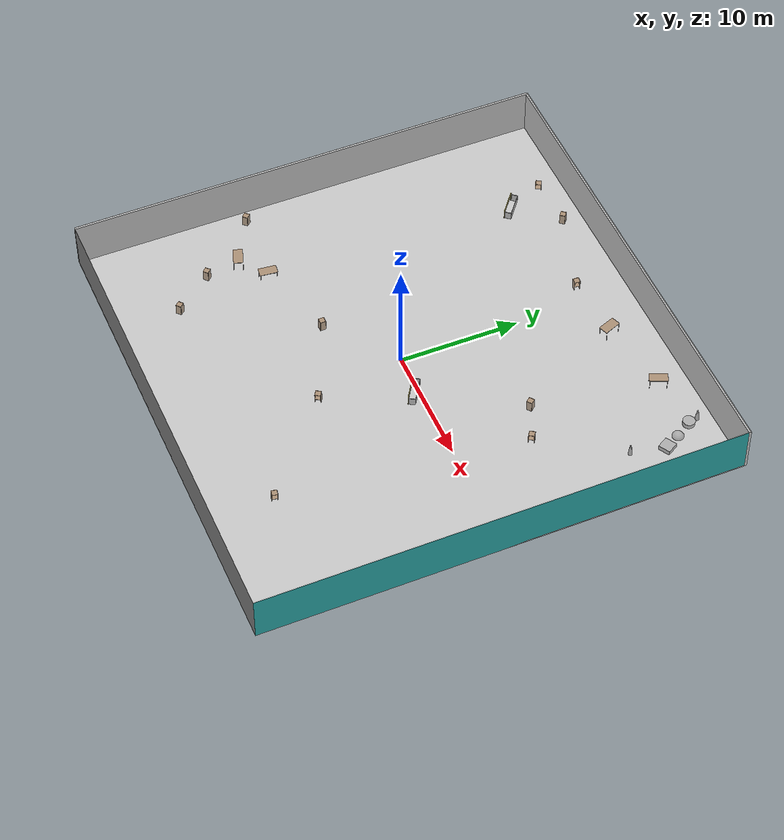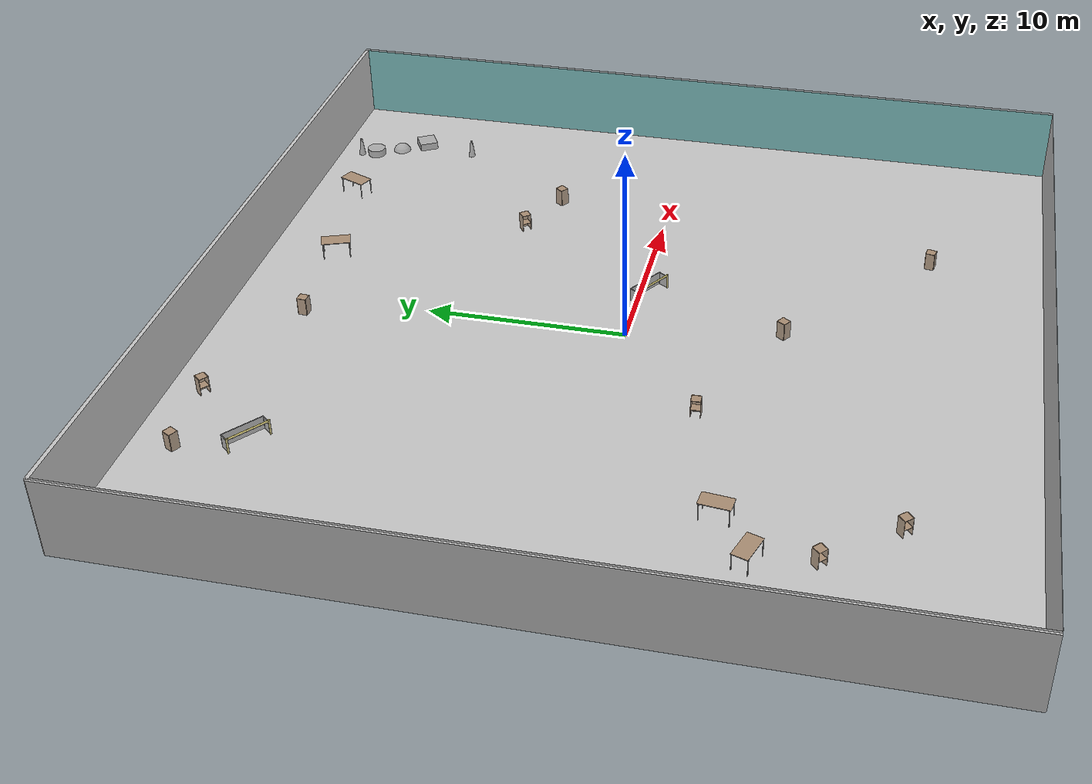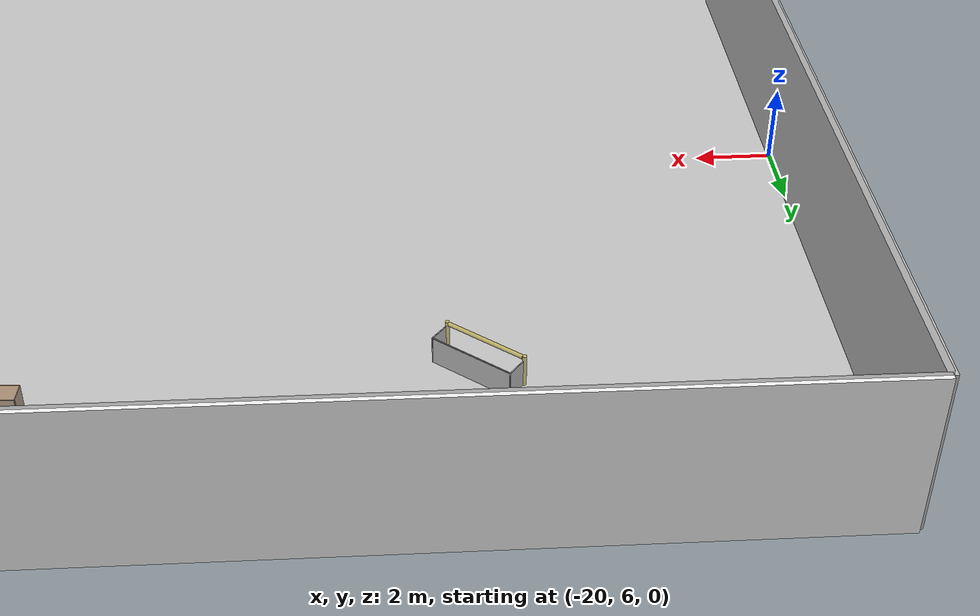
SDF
<sdf version="1.4">
 <world name="default">
  <physics type="ode">
   <max_step_size>0.001</max_step_size>
   <real_time_factor>1</real_time_factor>
   <real_time_update_rate>1000</real_time_update_rate>
   <gravity>0 0 -9.8</gravity>
  </physics>
  <scene><ambient>0.4 0.4 0.4 1</ambient><background>0.7 0.7 0.7 1</background><shadows>1</shadows></scene>
  <model name="Surrounding">
   <static>1</static>
   <link name="Ceiling">
    <collision name="Ceiling_Collision"><geometry><box><size>40 40 0.1</size></box></geometry></collision>
    <visual name="Ceiling_Visual">
     <geometry><box><size>40 40 0.1</size></box></geometry>
     <material>
      <script><uri>file://media/materials/scripts/gazebo.material</uri><name>Gazebo/GreyTransparent</name></script>
     </material>
    </visual>
    <pose>0 0 4.05 0 0 0</pose>
   </link>
   <link name="Wall_South">
    <collision name="Wall_South_Collision">
     <geometry><box><size>40 0 4</size></box></geometry>
     <pose>0 0 2 0 -0 0</pose>
    </collision>
    <visual name="Wall_South_Visual">
     <pose>0 0 2 0 -0 0</pose>
     <geometry><box><size>40 0 4</size></box></geometry>
     <material>
      <script><uri>file://media/materials/scripts/gazebo.material</uri><name>Gazebo/PioneerBody</name></script>
     </material>
    </visual>
    <velocity_decay><linear>0</linear><angular>0</angular></velocity_decay>
    <pose>0 -20 0 0 -0 0</pose>
   </link>
   <link name="Wall_East">
    <collision name="Wall_21_Collision">
     <geometry><box><size>40 0 4</size></box></geometry>
     <pose>0 0 2 0 -0 0</pose>
    </collision>
    <visual name="Wall_21_Visual">
     <pose>0 0 2 0 -0 0</pose>
     <geometry><box><size>40 0 4</size></box></geometry>
     <material>
      <script><uri>file://media/materials/scripts/gazebo.material</uri><name>Gazebo/Turquoise</name></script>
     </material>
    </visual>
    <velocity_decay><linear>0</linear><angular>0</angular></velocity_decay>
    <pose>20 0 0 0 -0 1.5708</pose>
   </link>
   <link name="Wall_North">
    <collision name="Wall_22_Collision">
     <geometry><box><size>40 0.2 4</size></box></geometry>
     <pose>0 0 2 0 -0 0</pose>
    </collision>
    <visual name="Wall_22_Visual">
     <pose>0 0 2 0 -0 0</pose>
     <geometry><box><size>40 0.2 4</size></box></geometry>
     <material>
      <script><uri>file://media/materials/scripts/gazebo.material</uri><name>Gazebo/WhiteGlow</name></script>
     </material>
    </visual>
    <velocity_decay><linear>0</linear><angular>0</angular></velocity_decay>
    <pose>0 20 0 0 -0 0</pose>
   </link>
   <link name="Wall_West">
    <collision name="Wall_23_Collision">
     <geometry><box><size>40 0.2 4</size></box></geometry>
     <pose>0 0 2 0 -0 0</pose>
    </collision>
    <visual name="Wall_23_Visual">
     <pose>0 0 2 0 -0 0</pose>
     <geometry><box><size>40 0.2 4</size></box></geometry>
     <material>
      <script><uri>file://media/materials/scripts/gazebo.material</uri><name>Gazebo/JointAnchor</name></script>
     </material>
    </visual>
    <velocity_decay><linear>0</linear><angular>0</angular></velocity_decay>
    <pose>-20 0 0 0 0 -1.5708</pose>
   </link>
   <link name="Ground_link">
    <collision name="collision">
     <pose>0 0 .05 0 -0 0</pose>
     <geometry><box><size>40 40 0.1</size></box></geometry>
    </collision>
    <visual name="visual">
     <pose>0 0 .05 0 -0 0</pose>
     <geometry><box><size>40 40 0.1</size></box></geometry>
     <material>
      <script><uri>file://media/materials/scripts/gazebo.material</uri><name>Gazebo/White</name></script>
     </material>
    </visual>
   </link>
   <static>1</static>
  </model>
  <spherical_coordinates>
   <surface_model>EARTH_WGS84</surface_model>
   <latitude_deg>0</latitude_deg>
   <longitude_deg>0</longitude_deg>
   <elevation>0</elevation>
   <heading_deg>0</heading_deg>
  </spherical_coordinates>
  <light name="lightball_0" type="diffuse">
   <diffuse>0.8 0.8 0.8 1</diffuse>
   <specular>0.2 0.2 0.2 1</specular>
   <attenuation>
    <range>100</range>
    <constant>0.7</constant>
    <linear>0.01</linear>
    <quadratic>0.001</quadratic>
   </attenuation>
   <direction>-0.5 0.1 -0.9</direction>
   <pose>6.76087864993 -18.9951185447 2.38137912667 0 0 0</pose>
  </light>
  <light name="lightball_1" type="diffuse">
   <diffuse>0.8 0.8 0.8 1</diffuse>
   <specular>0.2 0.2 0.2 1</specular>
   <attenuation>
    <range>100</range>
    <constant>0.7</constant>
    <linear>0.01</linear>
    <quadratic>0.001</quadratic>
   </attenuation>
   <direction>-0.5 0.1 -0.9</direction>
   <pose>-0.481071658987 14.5350861725 2.51685513558 0 0 0</pose>
  </light>
  <light name="lightball_2" type="diffuse">
   <diffuse>0.8 0.8 0.8 1</diffuse>
   <specular>0.2 0.2 0.2 1</specular>
   <attenuation>
    <range>100</range>
    <constant>0.7</constant>
    <linear>0.01</linear>
    <quadratic>0.001</quadratic>
   </attenuation>
   <direction>-0.5 0.1 -0.9</direction>
   <pose>-19.4892894938 15.2338686643 2.36268678214 0 0 0</pose>
  </light>
  <light name="lightball_3" type="diffuse">
   <diffuse>0.8 0.8 0.8 1</diffuse>
   <specular>0.2 0.2 0.2 1</specular>
   <attenuation>
    <range>100</range>
    <constant>0.7</constant>
    <linear>0.01</linear>
    <quadratic>0.001</quadratic>
   </attenuation>
   <direction>-0.5 0.1 -0.9</direction>
   <pose>-5.30811436231 -2.27758125033 3.3318938232 0 0 0</pose>
  </light>
  <include><uri>model://cabinet</uri><pose>-18.6918606616 -5.91768797878 0 0 0 0.762460534169</pose></include>
  <include><uri>model://cabinet</uri><pose>-14.197258181 -11.0225358488 0 0 0 0.800442806536</pose></include>
  <include><uri>model://table</uri><pose>-14.6823277028 -8.14200078212 0 0 0 2.81898514047</pose></include>
  <include><uri>model://cabinet</uri><pose>-11.5967466429 -14.2860775558 0 0 0 0.725535176157</pose></include>
  <include><uri>model://table</uri><pose>-12.2496446266 -6.4789512023 0 0 0 1.46139476803</pose></include>
  <include>
   <uri>model://robocup_3Dsim_goal</uri>
   <pose>-11.7191537574 14.5822540677 0 0 0 0.892420900928</pose>
  </include>
  <include><uri>model://cabinet</uri><pose>-12.6750703839 17.8230169766 0 0 0 2.63792006613</pose></include>
  <include><uri>model://cabinet</uri><pose>-8.6312335269 18.1649524385 0 0 0 0.874234000997</pose></include>
  <include><uri>model://cabinet</uri><pose>-5.56132703914 -4.47112713603 0 0 0 0.0252490917092</pose></include>
  <include><uri>model://cabinet</uri><pose>-1.49923332374 15.9871829616 0 0 0 3.06529791016</pose></include>
  <include><uri>model://cabinet</uri><pose>1.34374855733 -7.58083425044 0 0 0 2.54944230241</pose></include>
  <include>
   <uri>model://robocup_3Dsim_goal</uri>
   <pose>3.50287390354 -0.698374848542 0 0 0 1.00242365843</pose>
  </include>
  <include><uri>model://table</uri><pose>3.90587826306 16.2884690217 0 0 0 1.93246534198</pose></include>
  <include><uri>model://cabinet</uri><pose>9.09257748179 -14.2382402859 0 0 0 2.95448341581</pose></include>
  <include><uri>model://cabinet</uri><pose>8.4721245015 7.2689025084 0 0 0 0.678425636121</pose></include>
  <include><uri>model://table</uri><pose>10.2329540409 17.4476448978 0 0 0 1.16886468045</pose></include>
  <include><uri>model://cabinet</uri><pose>11.5002029121 5.97572730819 0 0 0 2.51282340918</pose></include>
  <include>
   <uri>model://construction_cone</uri>
   <pose>15.5948622776 12.3745117273 0 0 0 0.0238271718999</pose>
  </include>
  <include>
   <uri>model://textured_shapes</uri>
   <pose>15.4506405744 16.5586755868 0 0 0 0.525588011137</pose>
  </include>
  <include>
   <uri>model://construction_cone</uri>
   <pose>14.5103376705 18.6696920104 0 0 0 1.3595898594</pose>
  </include>
 </world>
</sdf>

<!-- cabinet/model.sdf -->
<sdf version="1.5">
  <model name="cabinet">
    <static>true</static>
    <link name="cabinet_bottom_plate">
      <inertial>
        <pose>0 0 -1 0 0 0</pose>
        <inertia>
          <ixx>2.050000</ixx>
          <ixy>0</ixy>
          <ixz>0</ixz>
          <iyy>2.050000</iyy>
          <iyz>0</iyz>
          <izz>2.050000</izz>
        </inertia>
        <mass>25.000000</mass>
      </inertial>
      <collision name="cabinet_bottom_plate_geom">
        <pose>0 0 0.010000 0 0 0</pose>
        <geometry>
          <box>
            <size>0.450000 0.450000 0.020000</size>
          </box>
        </geometry>
      </collision>
      <visual name="cabinet_bottom_plate_geom_visual">
        <pose>0 0 0.010000 0 0 0</pose>
        <geometry>
          <box>
            <size>0.450000 0.450000 0.020000</size>
          </box>
        </geometry>
        <material>
          <script>
            <uri>model://media/materials/scripts/gazebo.material</uri>
            <name>Gazebo/Wood</name>
          </script>
        </material>
      </visual>
      <collision name="cabinet_bottom_plate_geom_cabinet_back_plate">
        <pose>0.235000 0 0.510000 0 0 0</pose>
        <geometry>
          <box>
            <size>0.020000 0.450000 1.020000</size>
          </box>
        </geometry>
      </collision>
      <visual name="cabinet_bottom_plate_geom_cabinet_back_plate_visual">
        <pose>0.235000 0 0.510000 0 0 0</pose>
        <geometry>
          <box>
            <size>0.020000 0.450000 1.020000</size>
          </box>
        </geometry>
        <material>
          <script>
            <uri>model://media/materials/scripts/gazebo.material</uri>
            <name>Gazebo/Wood</name>
          </script>
        </material>
      </visual>
      <collision name="cabinet_bottom_plate_geom_cabinet_left_plate">
        <pose>0 0.235000 0.510000 0 0 0</pose>
        <geometry>
          <box>
            <size>0.450000 0.020000 1.020000</size>
          </box>
        </geometry>
      </collision>
      <visual name="cabinet_bottom_plate_geom_cabinet_left_plate_visual">
        <pose>0 0.235000 0.510000 0 0 0</pose>
        <geometry>
          <box>
            <size>0.450000 0.020000 1.020000</size>
          </box>
        </geometry>
        <material>
          <script>
            <uri>model://media/materials/scripts/gazebo.material</uri>
            <name>Gazebo/Wood</name>
          </script>
        </material>
      </visual>
      <collision name="cabinet_bottom_plate_geom_cabinet_middle_plate">
        <pose>0 0 0.510000 0 0 0</pose>
        <geometry>
          <box>
            <size>0.450000 0.450000 0.020000</size>
          </box>
        </geometry>
      </collision>
      <visual name="cabinet_bottom_plate_geom_cabinet_middle_plate_visual">
        <pose>0 0 0.510000 0 0 0</pose>
        <geometry>
          <box>
            <size>0.450000 0.450000 0.020000</size>
          </box>
        </geometry>
        <material>
          <script>
            <uri>model://media/materials/scripts/gazebo.material</uri>
            <name>Gazebo/Wood</name>
          </script>
        </material>
      </visual>
      <collision name="cabinet_bottom_plate_geom_cabinet_right_plate">
        <pose>0 -0.235000 0.510000 0 0 0</pose>
        <geometry>
          <box>
            <size>0.450000 0.020000 1.020000</size>
          </box>
        </geometry>
      </collision>
      <visual name="cabinet_bottom_plate_geom_cabinet_right_plate_visual">
        <pose>0 -0.235000 0.510000 0 0 0</pose>
        <geometry>
          <box>
            <size>0.450000 0.020000 1.020000</size>
          </box>
        </geometry>
        <material>
          <script>
            <uri>model://media/materials/scripts/gazebo.material</uri>
            <name>Gazebo/Wood</name>
          </script>
        </material>
      </visual>
      <collision name="cabinet_bottom_plate_geom_cabinet_top_plate">
        <pose>0 0 1.010000 0 0 0</pose>
        <geometry>
          <box>
            <size>0.450000 0.450000 0.020000</size>
          </box>
        </geometry>
      </collision>
      <visual name="cabinet_bottom_plate_geom_cabinet_top_plate_visual">
        <pose>0 0 1.010000 0 0 0</pose>
        <geometry>
          <box>
            <size>0.450000 0.450000 0.020000</size>
          </box>
        </geometry>
        <material>
          <script>
            <uri>model://media/materials/scripts/gazebo.material</uri>
            <name>Gazebo/Wood</name>
          </script>
        </material>
      </visual>
    </link>
  </model>
</sdf>

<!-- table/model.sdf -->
<sdf version="1.5">
  <model name="table">
    <static>true</static>
    <link name="link">
      <collision name="surface">
        <pose>0 0 1.0 0 0 0</pose>
        <geometry>
          <box>
            <size>1.5 0.8 0.03</size>
          </box>
        </geometry>
        <surface>
          <friction>
            <ode>
              <mu>0.6</mu>
              <mu2>0.6</mu2>
            </ode>
          </friction>
        </surface>
      </collision>
      <visual name="visual1">
        <pose>0 0 1.0 0 0 0</pose>
        <geometry>
          <box>
            <size>1.5 0.8 0.03</size>
          </box>
        </geometry>
        <material>
          <script>
            <uri>model://media/materials/scripts/gazebo.material</uri>
            <name>Gazebo/Wood</name>
          </script>
        </material>
      </visual>
      <collision name="front_left_leg">
        <pose>0.68 0.38 0.5 0 0 0</pose>
        <geometry>
          <cylinder>
            <radius>0.02</radius>
            <length>1.0</length>
          </cylinder>
        </geometry>
      </collision>
      <visual name="front_left_leg">
        <pose>0.68 0.38 0.5 0 0 0</pose>
        <geometry>
          <cylinder>
            <radius>0.02</radius>
            <length>1.0</length>
          </cylinder>
        </geometry>
        <material>
          <script>
            <uri>model://media/materials/scripts/gazebo.material</uri>
            <name>Gazebo/Grey</name>
          </script>
        </material>
      </visual>
      <collision name="front_right_leg">
        <pose>0.68 -0.38 0.5 0 0 0</pose>
        <geometry>
          <cylinder>
            <radius>0.02</radius>
            <length>1.0</length>
          </cylinder>
        </geometry>
      </collision>
      <visual name="front_right_leg">
        <pose>0.68 -0.38 0.5 0 0 0</pose>
        <geometry>
          <cylinder>
            <radius>0.02</radius>
            <length>1.0</length>
          </cylinder>
        </geometry>
        <material>
          <script>
            <uri>model://media/materials/scripts/gazebo.material</uri>
            <name>Gazebo/Grey</name>
          </script>
        </material>
      </visual>
      <collision name="back_right_leg">
        <pose>-0.68 -0.38 0.5 0 0 0</pose>
        <geometry>
          <cylinder>
            <radius>0.02</radius>
            <length>1.0</length>
          </cylinder>
        </geometry>
      </collision>
      <visual name="back_right_leg">
        <pose>-0.68 -0.38 0.5 0 0 0</pose>
        <geometry>
          <cylinder>
            <radius>0.02</radius>
            <length>1.0</length>
          </cylinder>
        </geometry>
        <material>
          <script>
            <uri>model://media/materials/scripts/gazebo.material</uri>
            <name>Gazebo/Grey</name>
          </script>
        </material>
      </visual>
      <collision name="back_left_leg">
        <pose>-0.68 0.38 0.5 0 0 0</pose>
        <geometry>
          <cylinder>
            <radius>0.02</radius>
            <length>1.0</length>
          </cylinder>
        </geometry>
      </collision>
      <visual name="back_left_leg">
        <pose>-0.68 0.38 0.5 0 0 0</pose>
        <geometry>
          <cylinder>
            <radius>0.02</radius>
            <length>1.0</length>
          </cylinder>
        </geometry>
        <material>
          <script>
            <uri>model://media/materials/scripts/gazebo.material</uri>
            <name>Gazebo/Grey</name>
          </script>
        </material>
      </visual>
    </link>
  </model>
</sdf>

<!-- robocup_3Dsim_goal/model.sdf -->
<sdf version="1.5">
  <model name="robocup_3d_goal">
    <static>true</static>
    <link name="left_post">
      <pose>0 1.05 0.45 0 0 0</pose>
      <collision name="collision">
        <geometry>
          <cylinder>
            <radius>0.05</radius>
            <length>0.9</length>
          </cylinder>
        </geometry>
      </collision>
      <visual name="visual">
        <geometry>
          <cylinder>
            <radius>0.05</radius>
            <length>0.9</length>
          </cylinder>
        </geometry>
        <material>
          <script>
            <uri>file://media/materials/scripts/gazebo.material</uri>
            <name>Gazebo/ZincYellow</name>
          </script>
        </material>
      </visual>
    </link>
    <link name="left_support_horiz_lower">
      <pose>0.30 1.05 0.01 0 0 0</pose>
      <collision name="collision">
        <geometry>
          <box>
            <size>0.50 0.02 0.02</size>
          </box>
        </geometry>
      </collision>
      <visual name="visual">
        <geometry>
          <box>
            <size>0.50 0.02 0.02</size>
          </box>
        </geometry>
        <material>
          <script>
            <uri>file://media/materials/scripts/gazebo.material</uri>
            <name>Gazebo/White</name>
          </script>
        </material>
      </visual>
    </link>
    <link name="left_support_horiz_upper">
      <pose>0.30 1.05 0.79 0 0 0</pose>
      <collision name="collision">
        <geometry>
          <box>
            <size>0.50 0.02 0.02</size>
          </box>
        </geometry>
      </collision>
      <visual name="visual">
        <geometry>
          <box>
            <size>0.50 0.02 0.02</size>
          </box>
        </geometry>
        <material>
          <script>
            <uri>file://media/materials/scripts/gazebo.material</uri>
            <name>Gazebo/White</name>
          </script>
        </material>
      </visual>
    </link>
    <link name="left_support_vertical">
      <pose>0.56 1.05 0.4 0 1.5708 0</pose>
      <collision name="collision">
        <geometry>
          <box>
            <size>0.80 0.02 0.02</size>
          </box>
        </geometry>
      </collision>
      <visual name="visual">
        <geometry>
          <box>
            <size>0.80 0.02 0.02</size>
          </box>
        </geometry>
        <material>
          <script>
            <uri>file://media/materials/scripts/gazebo.material</uri>
            <name>Gazebo/White</name>
          </script>
        </material>
      </visual>
    </link>
    <link name="right_support_horiz_lower">
      <pose>0.30 -1.05 0.01 0 0 0</pose>
      <collision name="collision">
        <geometry>
          <box>
            <size>0.50 0.02 0.02</size>
          </box>
        </geometry>
      </collision>
      <visual name="visual">
        <geometry>
          <box>
            <size>0.50 0.02 0.02</size>
          </box>
        </geometry>
        <material>
          <script>
            <uri>file://media/materials/scripts/gazebo.material</uri>
            <name>Gazebo/White</name>
          </script>
        </material>
      </visual>
    </link>
    <link name="right_support_horiz_upper">
      <pose>0.30 -1.05 0.79 0 0 0</pose>
      <collision name="collision">
        <geometry>
          <box>
            <size>0.50 0.02 0.02</size>
          </box>
        </geometry>
      </collision>
      <visual name="visual">
        <geometry>
          <box>
            <size>0.50 0.02 0.02</size>
          </box>
        </geometry>
        <material>
          <script>
            <uri>file://media/materials/scripts/gazebo.material</uri>
            <name>Gazebo/White</name>
          </script>
        </material>
      </visual>
    </link>
    <link name="right_support_vertical">
      <pose>0.56 -1.05 0.4 0 1.5708 0</pose>
      <collision name="collision">
        <geometry>
          <box>
            <size>0.80 0.02 0.02</size>
          </box>
        </geometry>
      </collision>
      <visual name="visual">
        <geometry>
          <box>
            <size>0.80 0.02 0.02</size>
          </box>
        </geometry>
        <material>
          <script>
            <uri>file://media/materials/scripts/gazebo.material</uri>
            <name>Gazebo/White</name>
          </script>
        </material>
      </visual>
    </link>
    <link name="center_support_horiz_lower">
      <pose>0.56 0 0.01 0 1.5708 0</pose>
      <collision name="collision">
        <geometry>
          <box>
            <size>0.02 2.08 0.02</size>
          </box>
        </geometry>
      </collision>
      <visual name="visual">
        <geometry>
          <box>
            <size>0.02 2.08 0.02</size>
          </box>
        </geometry>
        <material>
          <script>
            <uri>file://media/materials/scripts/gazebo.material</uri>
            <name>Gazebo/White</name>
          </script>
        </material>
      </visual>
    </link>
    <link name="center_support_horiz_upper">
      <pose>0.56 0 0.79 0 1.5708 0</pose>
      <collision name="collision">
        <geometry>
          <box>
            <size>0.02 2.08 0.02</size>
          </box>
        </geometry>
      </collision>
      <visual name="visual">
        <geometry>
          <box>
            <size>0.02 2.08 0.02</size>
          </box>
        </geometry>
        <material>
          <script>
            <uri>file://media/materials/scripts/gazebo.material</uri>
            <name>Gazebo/White</name>
          </script>
        </material>
      </visual>
    </link>
    <link name="right_post">
      <pose>0 -1.05 0.45 0 0 0</pose>
      <collision name="collision">
        <geometry>
          <cylinder>
            <radius>0.05</radius>
            <length>0.9</length>
          </cylinder>
        </geometry>
      </collision>
      <visual name="visual">
        <geometry>
          <cylinder>
            <radius>0.05</radius>
            <length>0.9</length>
          </cylinder>
        </geometry>
        <material>
          <script>
            <uri>file://media/materials/scripts/gazebo.material</uri>
            <name>Gazebo/ZincYellow</name>
          </script>
        </material>
      </visual>
    </link>
    <link name="crossbar">
      <pose>0 0 0.85 1.57 1.57 0</pose>
      <collision name="collision">
        <geometry>
          <cylinder>
            <radius>0.05</radius>
            <length>2.0</length>
          </cylinder>
        </geometry>
      </collision>
      <visual name="visual">
        <geometry>
          <cylinder>
            <radius>0.05</radius>
            <length>2.0</length>
          </cylinder>
        </geometry>
        <material>
          <script>
            <uri>file://media/materials/scripts/gazebo.material</uri>
            <name>Gazebo/ZincYellow</name>
          </script>
        </material>
      </visual>
    </link>
    <link name="center_net">
      <pose>0.56 0 0.40 0 0 0</pose>
      <collision name="collision">
        <geometry>
          <box>
            <size>0.01 2.1 0.80</size>
          </box>
        </geometry>
      </collision>
      <visual name="visual">
        <geometry>
          <box>
            <size>0.01 2.1 0.80</size>
          </box>
        </geometry>
        <material>
          <script>
            <uri>model://../model_source/models/robocup09_spl_field/materials/scripts/</uri>
            <uri>model://../model_source/models/robocup09_spl_field/materials/textures/</uri>
            <name>RoboCup/Net</name>
          </script>
        </material>
      </visual>
    </link>
    <link name="left_net">
      <pose>0.30 1.05 0.40 0 0 0</pose>
      <collision name="collision">
        <geometry>
          <box>
            <size>0.50 0.01 0.76</size>
          </box>
        </geometry>
      </collision>
      <visual name="visual">
        <geometry>
          <box>
            <size>0.50 0.01 0.76</size>
          </box>
        </geometry>
        <material>
          <script>
            <uri>model://../model_source/models/robocup09_spl_field/materials/scripts/</uri>
            <uri>model://../model_source/models/robocup09_spl_field/materials/textures/</uri>
            <name>RoboCup/Net</name>
          </script>
        </material>
      </visual>
    </link>
    <link name="right_net">
      <pose>0.30 -1.05 0.40 0 0 0</pose>
      <collision name="collision">
        <geometry>
          <box>
            <size>0.50 0.01 0.76</size>
          </box>
        </geometry>
      </collision>
      <visual name="visual">
        <geometry>
          <box>
            <size>0.50 0.01 0.76</size>
          </box>
        </geometry>
        <material>
          <script>
            <uri>model://../model_source/models/robocup09_spl_field/materials/scripts/</uri>
            <uri>model://../model_source/models/robocup09_spl_field/materials/textures/</uri>
            <name>RoboCup/Net</name>
          </script>
        </material>
      </visual>
    </link>
  </model>
</sdf>

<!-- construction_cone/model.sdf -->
<sdf version="1.5">
  <model name="Construction Cone">
    <link name="link">
      <collision name="collision">
        <geometry>
          <mesh>
            <scale>10 10 10</scale>
            <uri>file://isr-testbed/construction_cone/meshes/construction_cone.dae</uri>
          </mesh>
        </geometry>
      </collision>
      <visual name="visual">
        <geometry>
          <mesh>
            <scale>10 10 10</scale>
            <uri>file://isr-testbed/construction_cone/meshes/construction_cone.dae</uri>
          </mesh>
        </geometry>
      </visual>
    </link>
  </model>
</sdf>

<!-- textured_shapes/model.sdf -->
<sdf version="1.6">
  <model name="textured_shapes">
    <pose>0 0 0.5 0 0 0</pose>
    <link name="box">
      <pose>0 -1.5 0 0 0 0</pose>
      <collision name="collision">
        <geometry>
          <box>
            <size>1 1 1</size>
          </box>
        </geometry>
      </collision>
      <visual name="visual">
        <geometry>
          <box>
            <size>1 1 1</size>
          </box>
        </geometry>
        <material>
          <script>
            <uri>model://../model_source/models/textured_shapes/materials/scripts</uri>
            <uri>model://../model_source/models/textured_shapes/materials/textures</uri>
            <name>TexturedShape/Squares</name>
          </script>
        </material>
      </visual>
    </link>
    <link name="sphere">
      <collision name="collision">
        <geometry>
          <sphere>
            <radius>0.5</radius>
          </sphere>
        </geometry>
      </collision>
      <visual name="visual">
        <geometry>
          <sphere>
            <radius>0.5</radius>
          </sphere>
        </geometry>
        <material>
          <script>
            <uri>model://../model_source/models/textured_shapes/materials/scripts</uri>
            <uri>model://../model_source/models/textured_shapes/materials/textures</uri>
            <name>TexturedShape/Squares</name>
          </script>
        </material>
      </visual>
    </link>
    <link name="cylinder">
      <pose>0 1.5 0 0 0 0</pose>
      <collision name="collision">
        <geometry>
          <cylinder>
            <radius>0.5</radius>
            <length>1</length>
          </cylinder>
        </geometry>
      </collision>
      <visual name="visual">
        <geometry>
          <cylinder>
            <radius>0.5</radius>
            <length>1</length>
          </cylinder>
        </geometry>
        <material>
          <script>
            <uri>model://../model_source/models/textured_shapes/materials/scripts</uri>
            <uri>model://../model_source/models/textured_shapes/materials/textures</uri>
            <name>TexturedShape/Squares</name>
          </script>
        </material>
      </visual>
    </link>
  </model>
</sdf>
